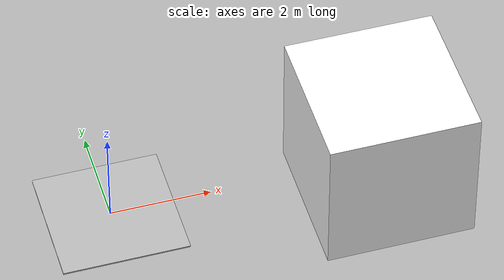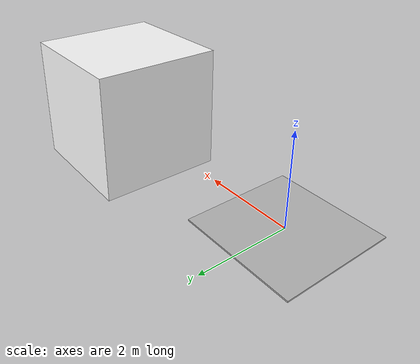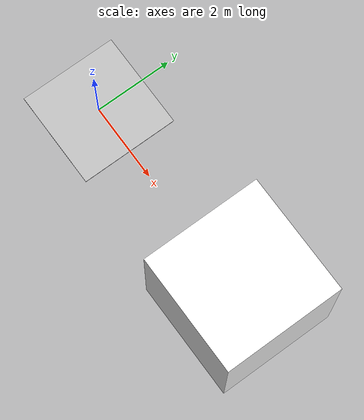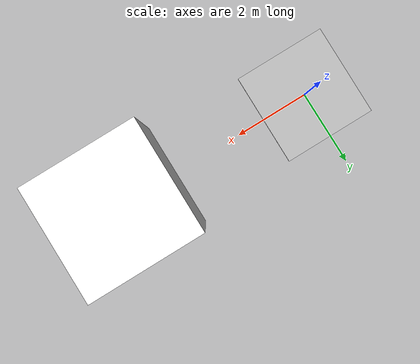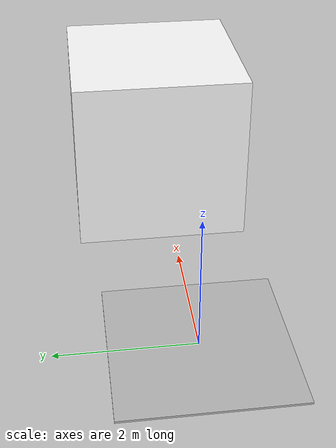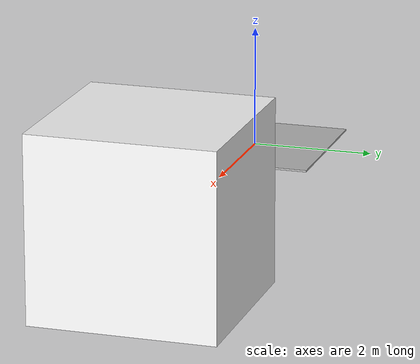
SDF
<?xml version="1.0" ?>
<sdf version="1.4">
  <world name="default">
    <!-- Uma fonte de luz global -->
    <include>
      <uri>model://sun</uri>
    </include>
    <!-- O chão -->
    <include>
      <uri>model://my_ground_plane_marcos</uri>
    </include>
    <!-- A parede -->
    <include>
      <uri>model://qr_coder_planta</uri>
    </include>

  </world>
</sdf>

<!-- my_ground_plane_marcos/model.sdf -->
<sdf version="1.5">
  <model name="my_ground_plane_marcos">
    <static>true</static>
    <link name="link">
      <collision name="collision">
        <geometry>
          <box>
            <size>2.5 2.5 .03</size>
          </box>
        </geometry>
      </collision>
      <visual name="visual">
        <cast_shadows>false</cast_shadows>
        <geometry>
          <box>
            <size>2.5 2.5 .03</size>
          </box>
        </geometry>
        <material>
          <script>
		  <uri>model://my_ground_plane_marcos/materials/scripts</uri>
		  <uri>model://my_ground_plane_marcos/materials/textures/</uri>
		  <name>MyGroundPlane_marcos/Image</name>
          </script>
        </material>
      </visual>
    </link>
  </model>
</sdf>

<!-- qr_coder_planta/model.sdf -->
<sdf version='1.6'>
  <model name='qr_coder_planta'>
    <link name='Wall_22'>
      <collision name='Wall_22_Collision'>
        <geometry>
          <box>
            <size>3 3 3</size>
          </box>
        </geometry>
        <pose frame=''>0 0 0.5 0 -0 0</pose>
      </collision>
      <visual name='Wall_22_Visual'>
        <pose frame=''>0 0 0.5 0 -0 0</pose>
        <geometry>
          <box>
            <size>3 3 3</size>
          </box>
        </geometry>
        <material>
          <script>
	    <uri>model://qr_coder_planta/materials/scripts</uri>
            <uri>model://qr_coder_planta/materials/textures</uri>
            <name>course/Image</name>
          </script>
          <ambient>1 1 1 1</ambient>
        </material>
      </visual>
      <pose frame=''>5.425 0 0 0 0 15.708</pose>
    </link>

    <static>1</static>
  </model>
</sdf>
